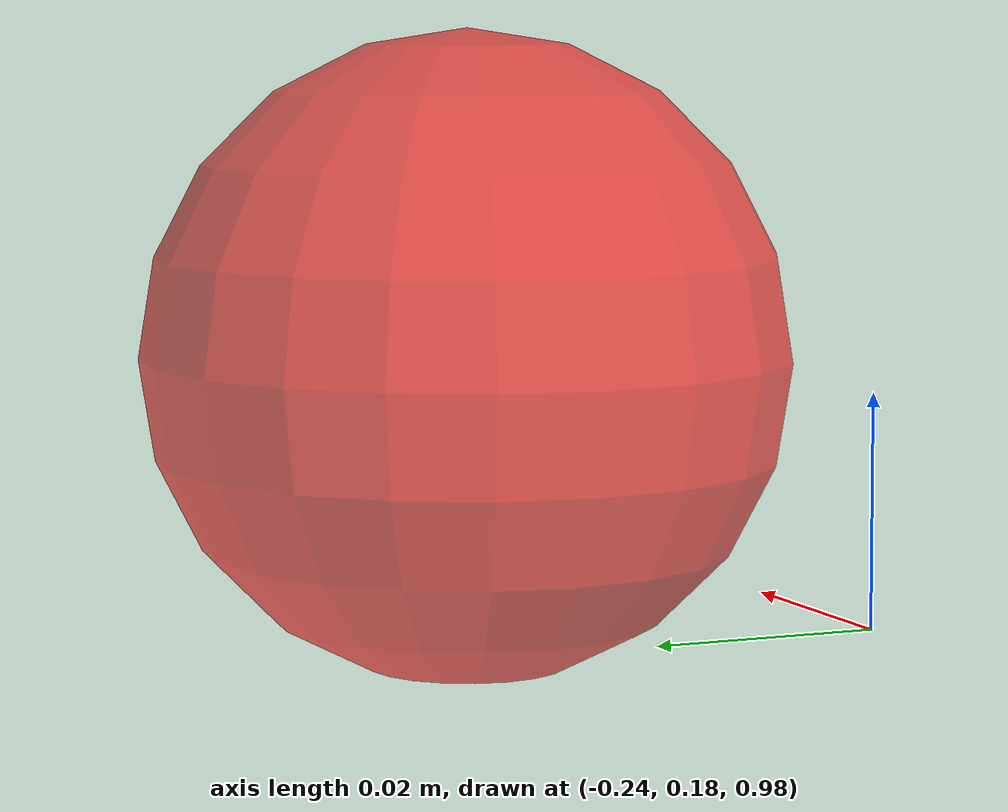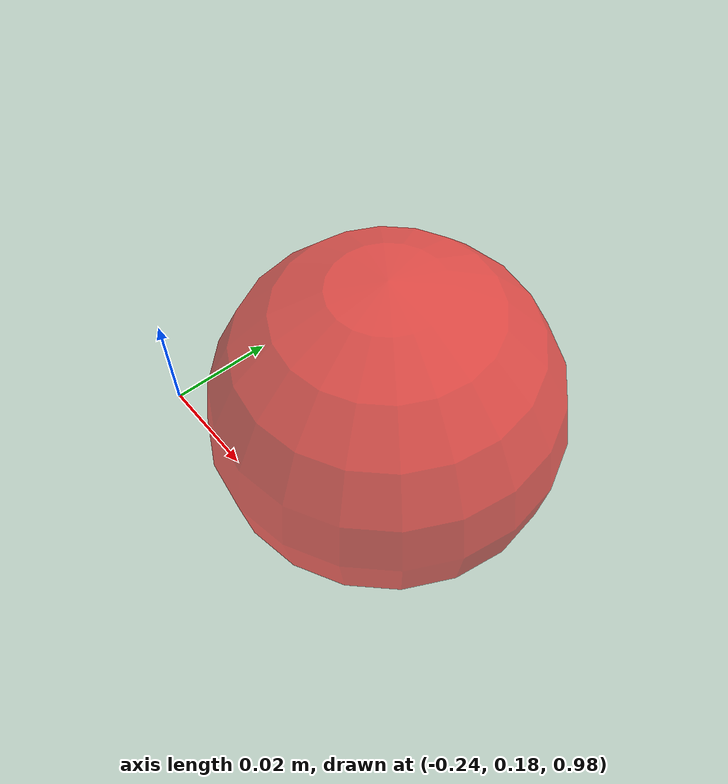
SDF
<?xml version="1.0" ?>
<sdf version="1.5">
  <model name="sphere">
    <static>true</static>
    <link name="link">

      <visual name="visual">
        <pose>-0.2 0.2 1.0 0 0 0</pose>
        <geometry>
          <sphere>
              <radius>0.03</radius>
          </sphere>
        </geometry>

        <material>
            <ambient>   1.0 0.0 0.0 0.6 </ambient>
            <diffuse>   1.0 0.0 0.0 0.6 </diffuse>
        </material>

        <transparency>0.2</transparency>

      </visual>

    </link>
  </model>
</sdf>
